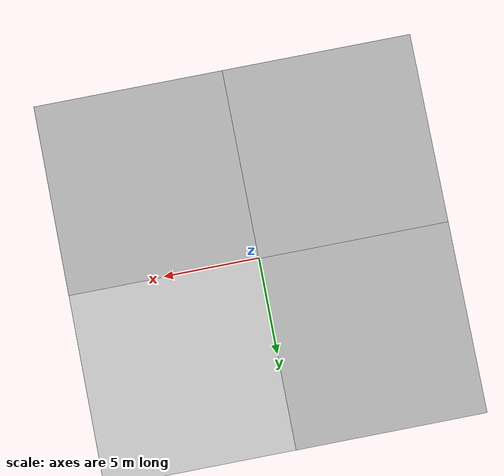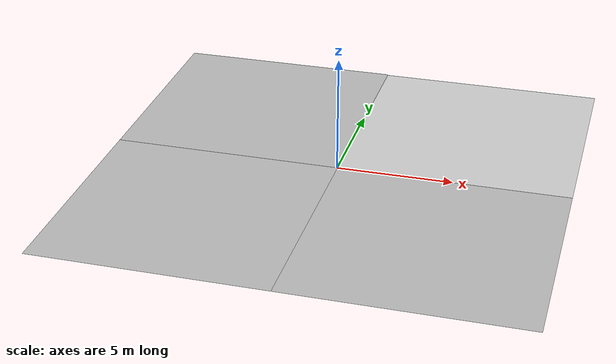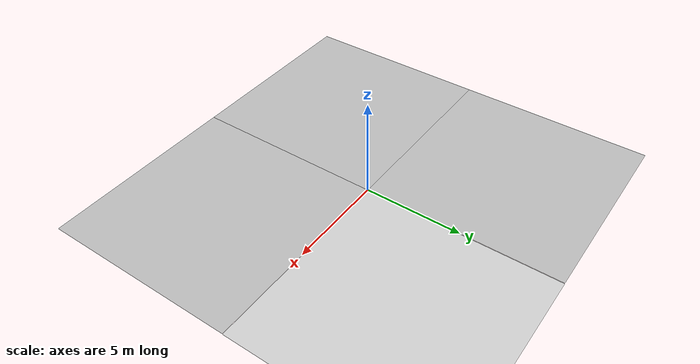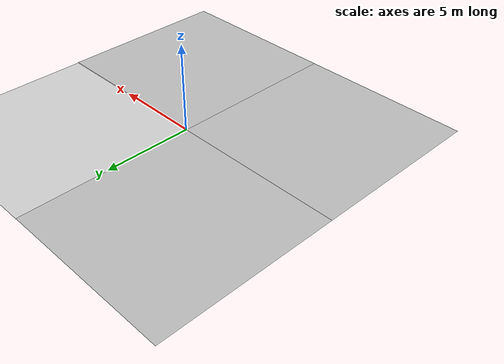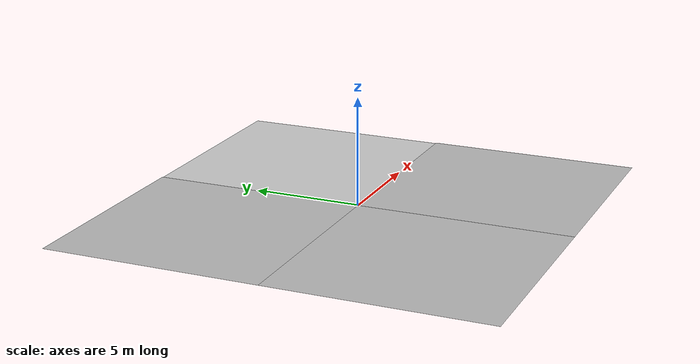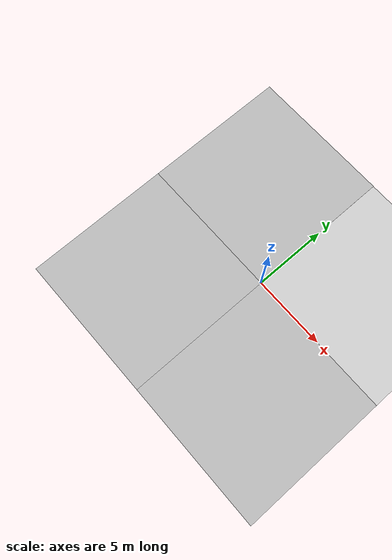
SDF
<?xml version="1.0" encoding="UTF-8" ?>
<sdf version="1.4">
  <world name="default">
    <scene>
      <ambient>0.5 0.5 0.5 1</ambient>
      <background>0.5 0.5 0.5 1</background>
      <shadows>false</shadows>
    </scene>
    <include>
      <uri>model://sun</uri>
    </include>
    <physics type="ode">
      <max_step_size>0.001</max_step_size>
      <real_time_factor>1</real_time_factor>
      <real_time_update_rate>1000</real_time_update_rate>
      <gravity>0 0 -9.81</gravity>
    </physics>
    <light type="directional" name="directional_light_1">
      <cast_shadows>false</cast_shadows>
      <pose>0 0 30 0.1 0.1 0</pose>
      <diffuse>.5 .5 .5 1</diffuse>
      <specular>.1 .1 .1 1</specular>
      <attenuation>
        <range>300</range>
      </attenuation>
      <direction>0.1 0.1 -1</direction>
    </light>
    <model name="simple_floor">
      <static>true</static>
      <link name="simple_floor_link">
        <pose>5 5 0 0 0 0</pose>
        <collision name="simple_floor_collision">
          <geometry>
            <plane>
              <normal>0 0 1</normal>
              <size>10 10</size>
            </plane>
          </geometry>
          <surface>
            <friction>
              <ode>
                <mu>10.0</mu>
                <mu2>10.0</mu2>
                <fdir1>0 0 0</fdir1>
                <slip1>0</slip1>
                <slip2>0</slip2>
              </ode>
            </friction>
            <bounce>
              <restitution_coefficient>0</restitution_coefficient>
              <threshold>1000000.0</threshold>
            </bounce>
            <contact>
              <ode>
                <soft_cfm>0</soft_cfm>
                <soft_erp>0.2</soft_erp>
                <kp>1e10</kp>
                <kd>1</kd>
                <max_vel>100.0</max_vel>
                <min_depth>0.0001</min_depth>
              </ode>
            </contact>
          </surface>
        </collision>
        <visual name="simple_floor_visual">
          <cast_shadows>false</cast_shadows>
          <geometry>
            <plane>
              <normal>0 0 1</normal>
              <size>10 10</size>
            </plane>
          </geometry>
          <material>
            <script>Gazebo/Grey</script>
          </material>
        </visual>
      </link>
    </model>
    <model name="plywood_floor">
      <static>true</static>
      <link name="plywood_floor_link">
        <pose>5 -5 0 0 0 0</pose>
        <collision name="plywood_floor_collision">
          <geometry>
            <plane>
              <normal>0 0 1</normal>
              <size>10 10</size>
            </plane>
          </geometry>
          <surface>
            <friction>
              <ode>
                <mu>25.0</mu>
                <mu2>25.0</mu2>
                <fdir1>0 0 0</fdir1>
                <slip1>0</slip1>
                <slip2>0</slip2>
              </ode>
            </friction>
            <bounce>
              <restitution_coefficient>0</restitution_coefficient>
              <threshold>100000.0</threshold>
            </bounce>
            <contact>
              <ode>
                <soft_cfm>0</soft_cfm>
                <soft_erp>0.2</soft_erp>
                <kp>1e10</kp>
                <kd>1</kd>
                <max_vel>100.0</max_vel>
                <min_depth>0.0001</min_depth>
              </ode>
            </contact>
          </surface>
        </collision>
        <visual name="plywood_floor_visual">
          <cast_shadows>false</cast_shadows>
          <geometry>
            <mesh>
              <uri>file://floors/plywood_floor.dae</uri>
              <scale>10 10 1</scale>
            </mesh>
          </geometry>
        </visual>
      </link>
    </model>
    <model name="marble_floor">
      <static>true</static>
      <link name="marble_floor_link">
        <pose>-5 5 0 0 0 0</pose>
        <collision name="marble_floor_collision">
          <geometry>
            <plane>
              <normal>0 0 1</normal>
              <size>10 10</size>
            </plane>
          </geometry>
          <surface>
            <friction>
              <ode>
                <mu>1.0</mu>
                <mu2>1.0</mu2>
                <fdir1>0 0 0</fdir1>
                <slip1>0</slip1>
                <slip2>0</slip2>
              </ode>
            </friction>
            <bounce>
              <restitution_coefficient>0</restitution_coefficient>
              <threshold>1000000.0</threshold>
            </bounce>
            <contact>
              <ode>
                <soft_cfm>0</soft_cfm>
                <soft_erp>0.2</soft_erp>
                <kp>1e10</kp>
                <kd>1</kd>
                <max_vel>100.0</max_vel>
                <min_depth>0.0001</min_depth>
              </ode>
            </contact>
          </surface>
        </collision>
        <visual name="marble_floor_visual">
          <cast_shadows>false</cast_shadows>
          <geometry>
            <mesh>
              <uri>file://floors/marble_floor_1.dae</uri>
              <scale>10 10 1</scale>
            </mesh>
          </geometry>
        </visual>
      </link>
    </model>
    <model name="rubber_floor">
      <static>true</static>
      <link name="rubber_floor_link">
        <pose>-5 -5 0 0 0 0</pose>
        <collision name="rubber_floor_collision">
          <geometry>
            <plane>
              <normal>0 0 1</normal>
              <size>10 10</size>
            </plane>
          </geometry>
          <surface>
            <friction>
              <ode>
                <mu>100.0</mu>
                <mu2>100.0</mu2>
                <fdir1>0 0 0</fdir1>
                <slip1>0</slip1>
                <slip2>0</slip2>
              </ode>
            </friction>
            <bounce>
              <restitution_coefficient>0</restitution_coefficient>
              <threshold>10000000.0</threshold>
            </bounce>
            <contact>
              <ode>
                <soft_cfm>0</soft_cfm>
                <soft_erp>0.2</soft_erp>
                <kp>1e11</kp>
                <kd>1</kd>
                <max_vel>100.0</max_vel>
                <min_depth>0.0001</min_depth>
              </ode>
            </contact>
          </surface>
        </collision>
        <visual name="rubber_floor_visual">
          <cast_shadows>false</cast_shadows>
          <geometry>
            <mesh>
              <uri>file://floors/rubber_floor_1.dae</uri>
              <scale>10 10 1</scale>
            </mesh>
          </geometry>
        </visual>
      </link>
    </model>
  </world>
</sdf>
